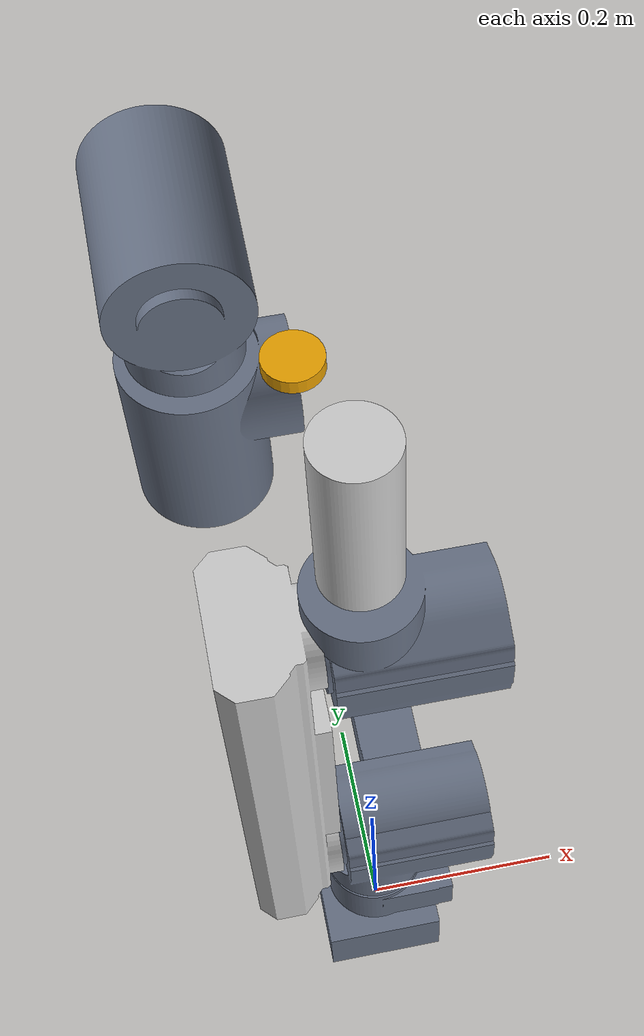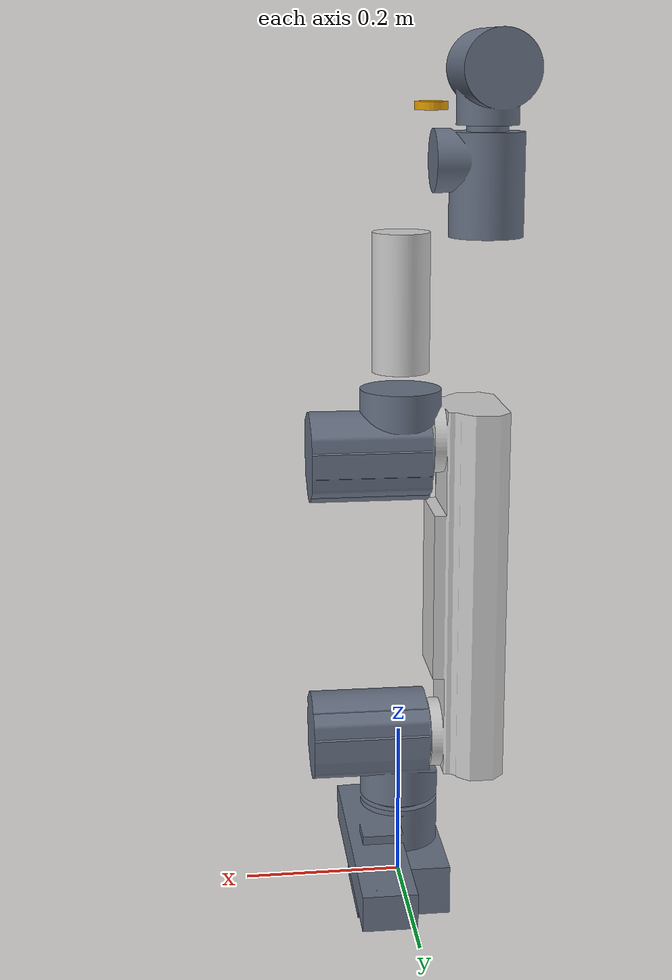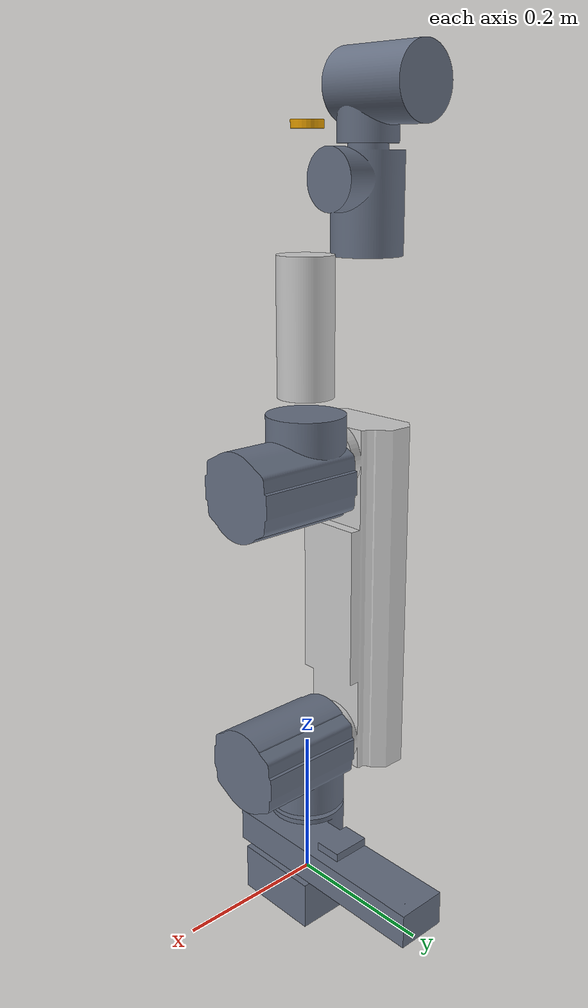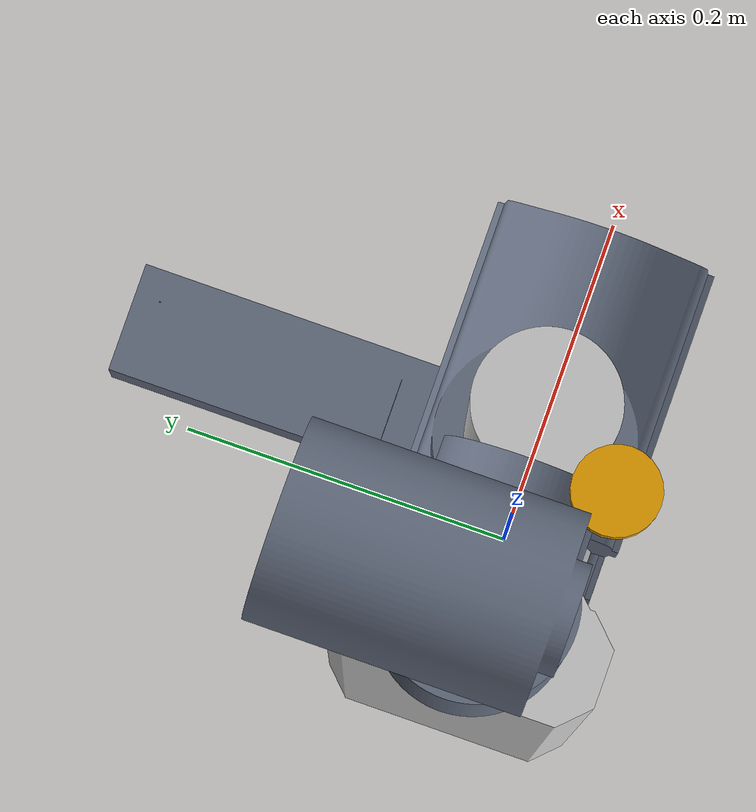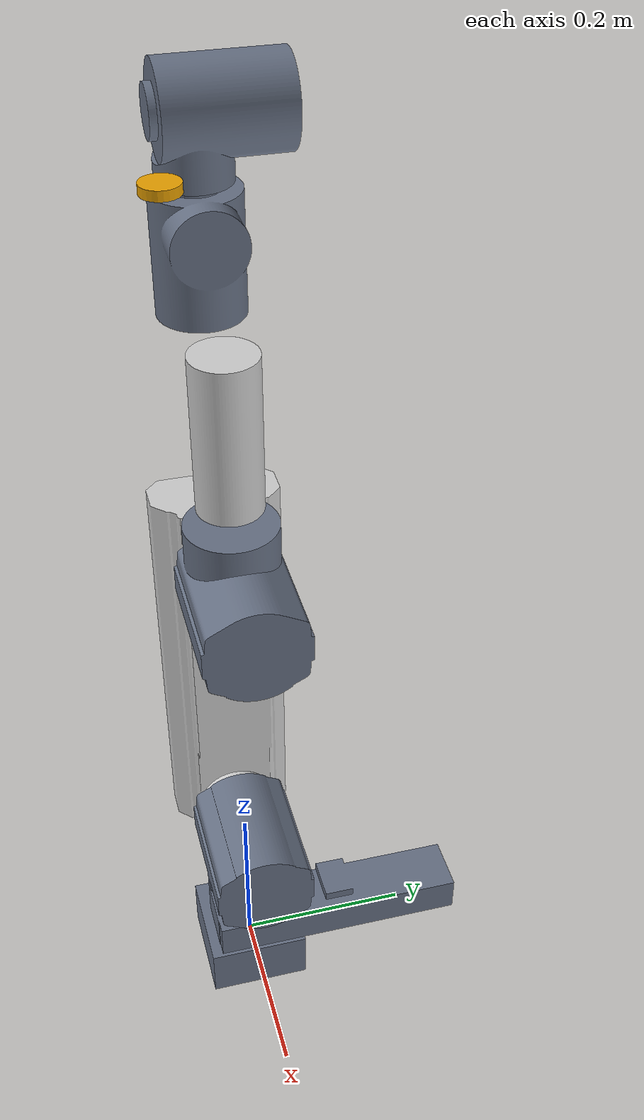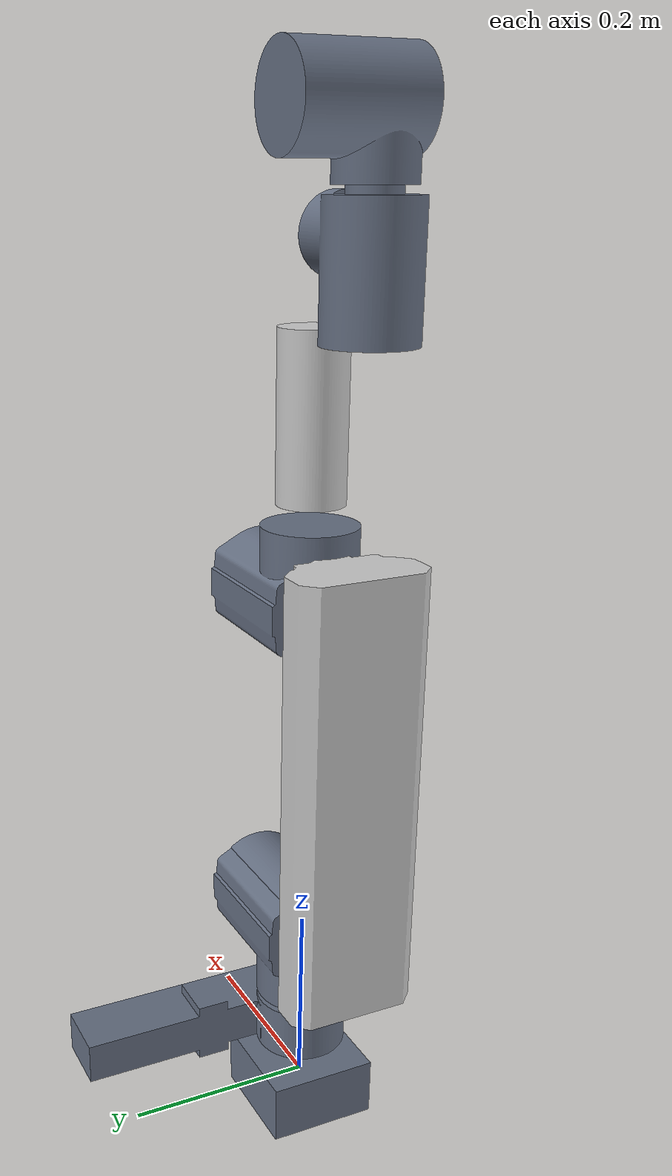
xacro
<?xml version="1.0" ?>
<robot name="Arm" xmlns:xacro="http://www.ros.org/wiki/xacro">

<xacro:include filename="/urdf/materials.xacro" />
<xacro:include filename="/urdf/Arm.ros2control" />
<xacro:include filename="/urdf/Arm.gazebo" />

<link name="base_link">
  <visual>
    <origin xyz="0 0 0" rpy="0 0 0"/>
    <geometry>
      <mesh filename="/meshes/base_link.stl" scale="0.001 0.001 0.001"/>
    </geometry>
    <material name="part"/>
  </visual>
  <collision>
    <origin xyz="0 0 0" rpy="0 0 0"/>
    <geometry>
      <mesh filename="/meshes/base_link.stl" scale="0.001 0.001 0.001"/>
    </geometry>
  </collision>
</link>

<link name="link_2">
  <inertial>
    <origin xyz="-0.049810162062759074 1.589806884183531e-07 0.19500005414972732" rpy="0 0 0"/>
    <mass value="38.40870266620278"/>
    <inertia ixx="0.764658" iyy="0.736453" izz="0.07174" ixy="0.0" iyz="-0.0" ixz="0.0"/>
  </inertial>
  <visual>
    <origin xyz="0.0371 0.0 -0.1755" rpy="0 0 0"/>
    <geometry>
      <mesh filename="/meshes/link_2_1.stl" scale="0.001 0.001 0.001"/>
    </geometry>
    <material name="light_grey"/>
  </visual>
  <collision>
    <origin xyz="0.0371 0.0 -0.1755" rpy="0 0 0"/>
    <geometry>
      <mesh filename="/meshes/link_2_1.stl" scale="0.001 0.001 0.001"/>
    </geometry>
  </collision>
</link>

<link name="link_3">
  <inertial>
    <origin xyz="1.0203770296837744e-15 3.552713678800501e-16 0.1025001624746138" rpy="0 0 0"/>
    <mass value="6.19311977279174"/>
    <inertia ixx="0.023585" iyy="0.023585" izz="0.003793" ixy="0.0" iyz="0.0" ixz="0.0"/>
  </inertial>
  <visual>
    <origin xyz="-0.0 0.0 -0.6505" rpy="0 0 0"/>
    <geometry>
      <mesh filename="/meshes/link_3_1.stl" scale="0.001 0.001 0.001"/>
    </geometry>
    <material name="light_grey"/>
  </visual>
  <collision>
    <origin xyz="-0.0 0.0 -0.6505" rpy="0 0 0"/>
    <geometry>
      <mesh filename="/meshes/link_3_1.stl" scale="0.001 0.001 0.001"/>
    </geometry>
  </collision>
</link>

<link name="joint_1">
  <inertial>
    <origin xyz="0.02779117383103278 0.07203746755556571 0.029099449641664183" rpy="0 0 0"/>
    <mass value="9.796999285044631"/>
    <inertia ixx="0.074413" iyy="0.011341" izz="0.081054" ixy="-0.01025" iyz="0.000668" ixz="0.00026"/>
  </inertial>
  <visual>
    <origin xyz="0.0 0.0 -0.029" rpy="0 0 0"/>
    <geometry>
      <mesh filename="/meshes/joint_1_1.stl" scale="0.001 0.001 0.001"/>
    </geometry>
    <material name="part"/>
  </visual>
  <collision>
    <origin xyz="0.0 0.0 -0.029" rpy="0 0 0"/>
    <geometry>
      <mesh filename="/meshes/joint_1_1.stl" scale="0.001 0.001 0.001"/>
    </geometry>
  </collision>
</link>

<link name="joint_2">
  <inertial>
    <origin xyz="0.03366406008832746 2.4438716015897533e-06 0.07394555512414713" rpy="0 0 0"/>
    <mass value="14.113695138598164"/>
    <inertia ixx="0.029282" iyy="0.043537" izz="0.037906" ixy="-0.0" iyz="-2e-06" ixz="-0.004646"/>
  </inertial>
  <visual>
    <origin xyz="0.0 0.0 -0.0925" rpy="0 0 0"/>
    <geometry>
      <mesh filename="/meshes/joint_2_1.stl" scale="0.001 0.001 0.001"/>
    </geometry>
    <material name="part"/>
  </visual>
  <collision>
    <origin xyz="0.0 0.0 -0.0925" rpy="0 0 0"/>
    <geometry>
      <mesh filename="/meshes/joint_2_1.stl" scale="0.001 0.001 0.001"/>
    </geometry>
  </collision>
</link>

<link name="joint_3">
  <inertial>
    <origin xyz="0.07076406008832989 -2.4438716071775458e-06 0.009054607350454491" rpy="0 0 0"/>
    <mass value="14.113695138598164"/>
    <inertia ixx="0.029282" iyy="0.043537" izz="0.037906" ixy="0.0" iyz="-2e-06" ixz="0.004646"/>
  </inertial>
  <visual>
    <origin xyz="0.0371 0.0 -0.5675" rpy="0 0 0"/>
    <geometry>
      <mesh filename="/meshes/joint_3_1.stl" scale="0.001 0.001 0.001"/>
    </geometry>
    <material name="part"/>
  </visual>
  <collision>
    <origin xyz="0.0371 0.0 -0.5675" rpy="0 0 0"/>
    <geometry>
      <mesh filename="/meshes/joint_3_1.stl" scale="0.001 0.001 0.001"/>
    </geometry>
  </collision>
</link>

<link name="joint_5">
  <inertial>
    <origin xyz="0.023923642393848504 -2.0314690871714446e-08 0.058784176535901955" rpy="0 0 0"/>
    <mass value="7.117801366510354"/>
    <inertia ixx="0.008719" iyy="0.014343" izz="0.012602" ixy="-0.0" iyz="-0.0" ixz="-0.001058"/>
  </inertial>
  <visual>
    <origin xyz="-0.0 -0.0 -0.8555" rpy="0 0 0"/>
    <geometry>
      <mesh filename="/meshes/joint_5_1.stl" scale="0.001 0.001 0.001"/>
    </geometry>
    <material name="part"/>
  </visual>
  <collision>
    <origin xyz="-0.0 -0.0 -0.8555" rpy="0 0 0"/>
    <geometry>
      <mesh filename="/meshes/joint_5_1.stl" scale="0.001 0.001 0.001"/>
    </geometry>
  </collision>
</link>

<link name="joint_6">
  <inertial>
    <origin xyz="-0.05878401231370166 -0.023923642393565595 1.4215174881648807e-07" rpy="0 0 0"/>
    <mass value="7.117801366510353"/>
    <inertia ixx="0.012602" iyy="0.008719" izz="0.014343" ixy="-0.001058" iyz="0.0" ixz="0.0"/>
  </inertial>
  <visual>
    <origin xyz="0.0408 0.0 -0.9205" rpy="0 0 0"/>
    <geometry>
      <mesh filename="/meshes/joint_6_1.stl" scale="0.001 0.001 0.001"/>
    </geometry>
    <material name="part"/>
  </visual>
  <collision>
    <origin xyz="0.0408 0.0 -0.9205" rpy="0 0 0"/>
    <geometry>
      <mesh filename="/meshes/joint_6_1.stl" scale="0.001 0.001 0.001"/>
    </geometry>
  </collision>
</link>

<link name="flange">
  <inertial>
    <mass value="0.1"/>
    <origin xyz="0 0 0" rpy="0 0 0"/>
    <inertia ixx="1e-5" ixy="0.0" ixz="0.0" iyy="1e-5" iyz="0.0" izz="1e-5"/>
  </inertial>
  <visual>
    <origin xyz="0.0 0.0 0.0" rpy="0 0 0"/>
    <geometry>
      <cylinder radius="0.02" length="0.01"/>
    </geometry>
  </visual>
  <collision>
    <origin xyz="0.0 0.0 0.0" rpy="0 0 0"/>
    <geometry>
      <cylinder radius="0.02" length="0.01"/>
    </geometry>
  </collision>
</link>

<joint name="base_link_to_joint_1" type="fixed">
  <origin xyz="0.0 0.0 0.029" rpy="0 0 0"/>
  <parent link="base_link"/>
  <child link="joint_1"/>
</joint>

<joint name="joint_1_to_joint_2" type="continuous">
  <origin xyz="0.0 0.0 0.0635" rpy="0 0 0"/>
  <parent link="joint_1"/>
  <child link="joint_2"/>
  <axis xyz="0.0 -0.0 1.0"/>
</joint>

<joint name="joint_2_to_link_2" type="continuous">
  <origin xyz="-0.0371 0.0 0.083" rpy="0 0 0"/>
  <parent link="joint_2"/>
  <child link="link_2"/>
  <axis xyz="-1.0 0.0 0.0"/>
</joint>

<joint name="link_2_to_joint_3" type="continuous">
  <origin xyz="0.0 0.0 0.392" rpy="0 0 0"/>
  <parent link="link_2"/>
  <child link="joint_3"/>
  <axis xyz="1.0 -0.0 -0.0"/>
</joint>

<joint name="joint_3_to_link_3" type="fixed">
  <origin xyz="0.0371 0.0 0.083" rpy="0 0 0"/>
  <parent link="joint_3"/>
  <child link="link_3"/>
</joint>

<joint name="link_3_to_joint_5" type="fixed">
  <origin xyz="0.0 0.0 0.205" rpy="0 0 0"/>
  <parent link="link_3"/>
  <child link="joint_5"/>
</joint>

<joint name="joint_5_to_joint_6" type="continuous">
  <origin xyz="-0.0408 -0.0 0.065" rpy="0 0 0"/>
  <parent link="joint_5"/>
  <child link="joint_6"/>
  <axis xyz="-1.0 0.0 -0.0"/>
</joint>

<joint name="joint_6_to_flange" type="continuous">
  <origin xyz="0.0 -0.0408 0.065" rpy="0 0 0"/>
  <parent link="joint_6"/>
  <child link="flange"/>
  <axis xyz="-0.0 -1.0 -0.0"/>
</joint>

</robot>

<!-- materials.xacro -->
<robot name="Arm" xmlns:xacro="http://www.ros.org/wiki/xacro" >

<material name="part">
  <color rgba="0.400 0.439 0.5137 1.000"/>
</material>

<material name="light_grey">
  <color rgba="0.800 0.800 0.800 1.000"/>
</material>

<material name="silver">
  <color rgba="0.700 0.700 0.700 1.000"/>
</material>

</robot>

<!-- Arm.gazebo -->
<robot name="Arm" xmlns:xacro="http://www.ros.org/wiki/xacro" >

<xacro:property name="body_color" value="Gazebo/Silver" />

<gazebo reference="base_link">
  <material>${body_color}</material>
  <mu1>0.2</mu1>
  <mu2>0.2</mu2>
  <self_collide>true</self_collide>
  <gravity>true</gravity>
</gazebo>

<gazebo reference="joint_1_1_1">
  <material>${body_color}</material>
  <mu1>0.2</mu1>
  <mu2>0.2</mu2>
  <self_collide>true</self_collide>
</gazebo>

<gazebo reference="link_3_1_1">
  <material>${body_color}</material>
  <mu1>0.2</mu1>
  <mu2>0.2</mu2>
  <self_collide>true</self_collide>
</gazebo>

<gazebo reference="joint_3_1_1">
  <material>${body_color}</material>
  <mu1>0.2</mu1>
  <mu2>0.2</mu2>
  <self_collide>true</self_collide>
</gazebo>

<gazebo reference="link_2_1_1">
  <material>${body_color}</material>
  <mu1>0.2</mu1>
  <mu2>0.2</mu2>
  <self_collide>true</self_collide>
</gazebo>

<gazebo reference="joint_2_1_1">
  <material>${body_color}</material>
  <mu1>0.2</mu1>
  <mu2>0.2</mu2>
  <self_collide>true</self_collide>
</gazebo>

<gazebo reference="joint_6_1_1">
  <material>${body_color}</material>
  <mu1>0.2</mu1>
  <mu2>0.2</mu2>
  <self_collide>true</self_collide>
</gazebo>

<gazebo reference="joint_5_1_1">
  <material>${body_color}</material>
  <mu1>0.2</mu1>
  <mu2>0.2</mu2>
  <self_collide>true</self_collide>
</gazebo>

</robot>
